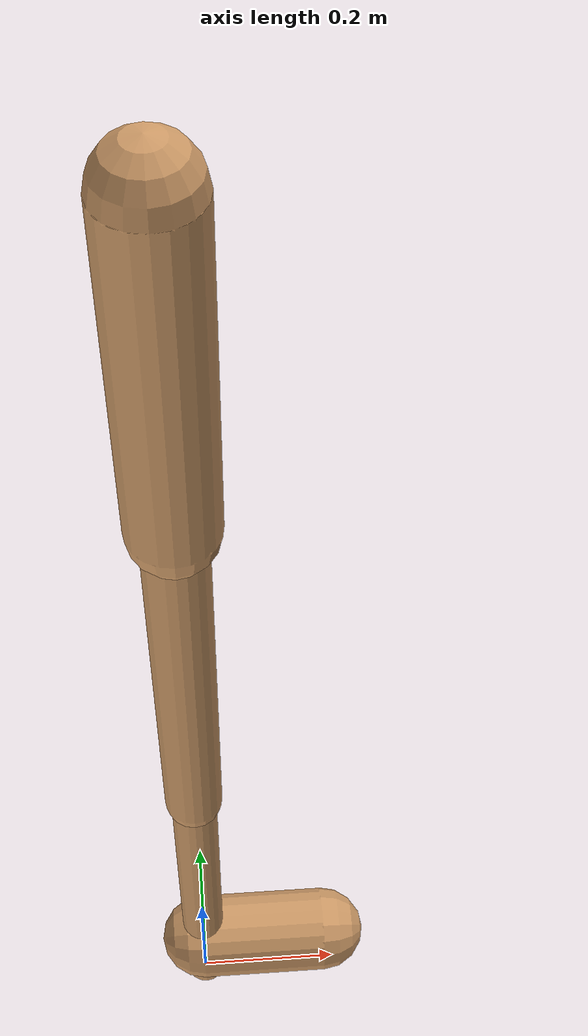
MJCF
<mujoco model="walker2d">
  <compiler angle="degree" coordinate="global" inertiafromgeom="true" />
  <default>
    <joint armature="0.01" damping=".1" limited="true" />
    <geom conaffinity="0" condim="3" contype="1" density="1000" friction="0.8 .1 .1" rgba="0.8 0.6 .4 1" />
  </default>
  <option integrator="RK4" timestep="0.002" />
  <worldbody>

    <body name="torso" pos="0 0 0.18026483959846015">
      <joint armature="0" axis="1 0 0" damping="0" limited="false" name="ignorex" pos="0 0 0" stiffness="0" type="slide" />
      <joint armature="0" axis="0 0 1" damping="0" limited="false" name="ignorez" pos="0 0 0" ref="1.25" stiffness="0" type="slide" />
      <joint armature="0" axis="0 1 0" damping="0" limited="false" name="ignorey" pos="0 0 0" stiffness="0" type="hinge" />
      <geom fromto="0 0 1.45 0 0 1.05" name="torso_geom" size="0.05139073800170131" type="capsule" />
      <body name="thigh">
        <joint axis="0 -1 0" name="thigh_joint" pos="0 0 1.05" range="-150 0" type="hinge" />
        <geom fromto="0.0 0.0 1.05 0.0 0.0 0.5146113917691504" name="thigh_geom" size="0.0370171971446456" type="capsule" />
        <body name="leg" pos="0.0 0.0 -0.0853886082308496">
          <joint axis="0 -1 0" name="leg_joint" pos="0 0 0.6" range="-150 0" type="hinge" />
          <geom fromto="0.0 0.0 0.6 0.0 0.0 0.0051237686323894055" name="leg_geom" size="0.029613757715716484" type="capsule" />
          <body name="foot" pos="0.0 0.0 -0.0948762313676106">
            <joint axis="0 -1 0" name="foot_joint" pos="0 0 0.1" range="-45 45" type="hinge" />
            <geom fromto="0.0 0.0 0.1 0.17961938507818453 0.0 0.1" name="foot_geom" size="0.06208352716683" type="capsule" />
          </body>
        </body>
      </body>

      <body name="thigh_left">
        <joint axis="0 -1 0" name="thigh_left_joint" pos="0 0 1.05" range="-150 0" type="hinge" />
        <geom fromto="0.0 0.0 1.05 0.0 0.0 0.5146113917691504" name="thigh_left_geom" rgba=".7 .3 .6 1" size="0.0370171971446456" type="capsule" />
        <body name="leg_left" pos="0.0 0.0 -0.0853886082308496">
          <joint axis="0 -1 0" name="leg_left_joint" pos="0 0 0.6" range="-150 0" type="hinge" />
          <geom fromto="0.0 0.0 0.6 0.0 0.0 0.0051237686323894055" name="leg_left_geom" rgba=".7 .3 .6 1" size="0.029613757715716484" type="capsule" />
          <body name="foot_left" pos="0.0 0.0 -0.0948762313676106">
            <joint axis="0 -1 0" name="foot_left_joint" pos="0 0 0.1" range="-45 45" type="hinge" />
            <geom fromto="0.0 0.0 0.1 0.17961938507818453 0.0 0.1" name="foot_left_geom" rgba=".7 .3 .6 1" size="0.06208352716683" type="capsule" />
          </body>
        </body>
      </body>
    </body>
  </worldbody>
  <actuator>

    <motor ctrllimited="true" ctrlrange="-1.0 1.0" gear="100" joint="thigh_joint" />
    <motor ctrllimited="true" ctrlrange="-1.0 1.0" gear="100" joint="leg_joint" />
    <motor ctrllimited="true" ctrlrange="-1.0 1.0" gear="100" joint="foot_joint" />
    <motor ctrllimited="true" ctrlrange="-1.0 1.0" gear="100" joint="thigh_left_joint" />
    <motor ctrllimited="true" ctrlrange="-1.0 1.0" gear="100" joint="leg_left_joint" />
    <motor ctrllimited="true" ctrlrange="-1.0 1.0" gear="100" joint="foot_left_joint" />

  </actuator>
</mujoco>
